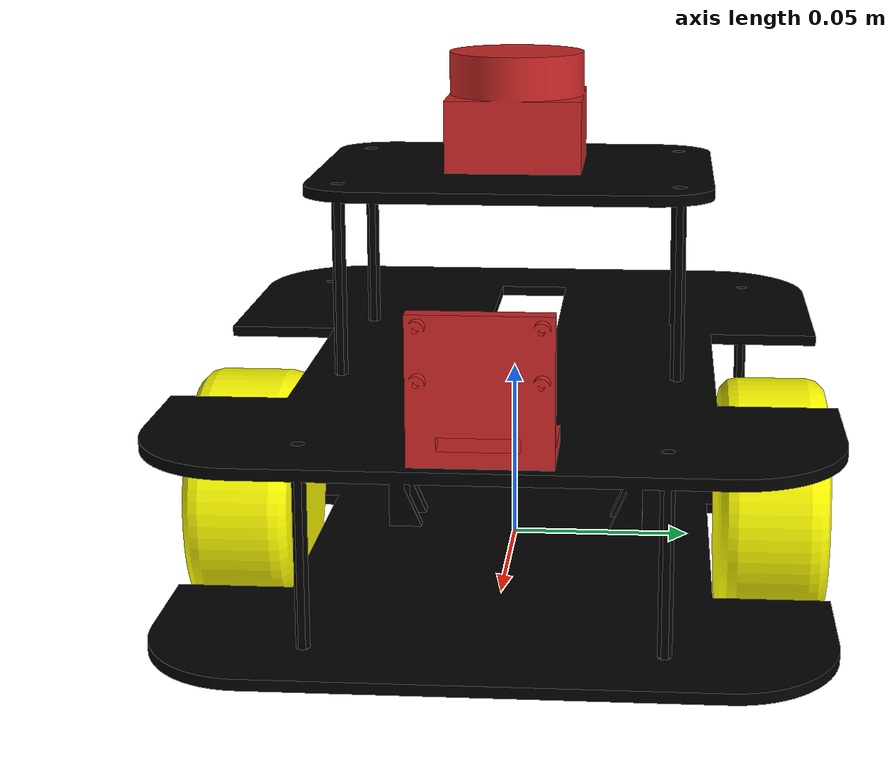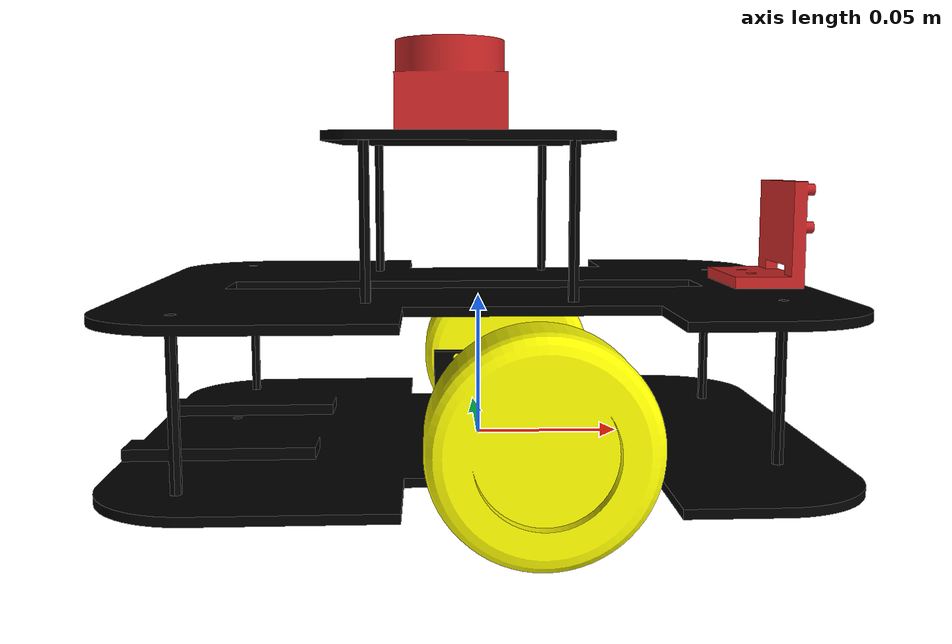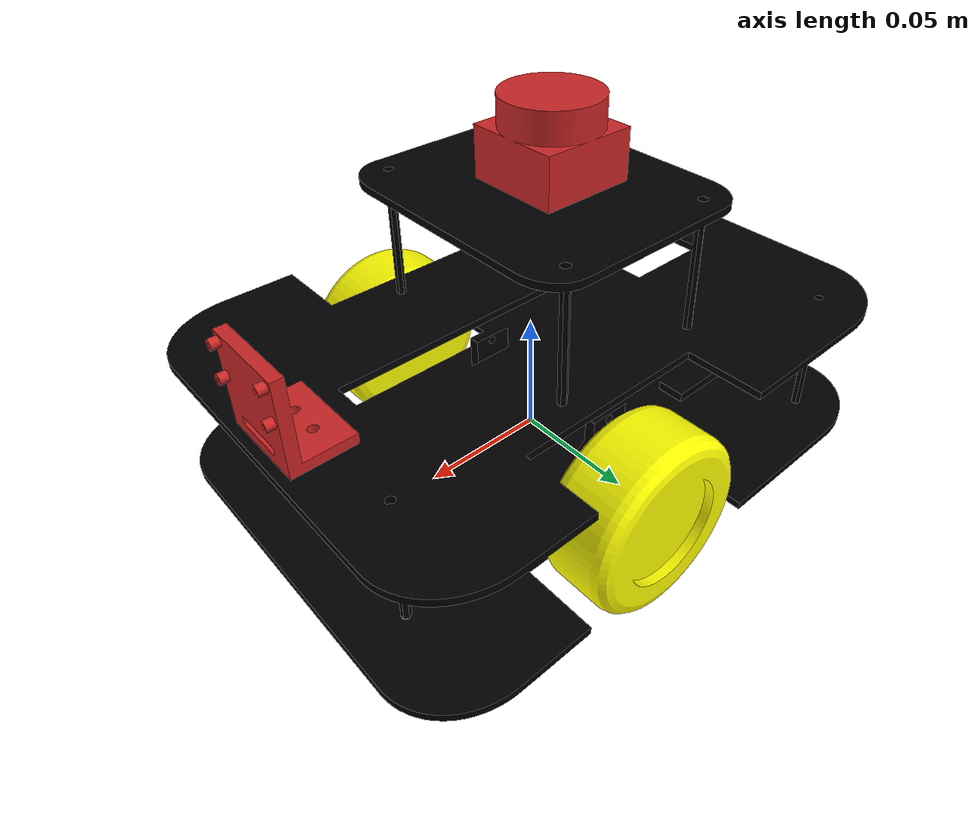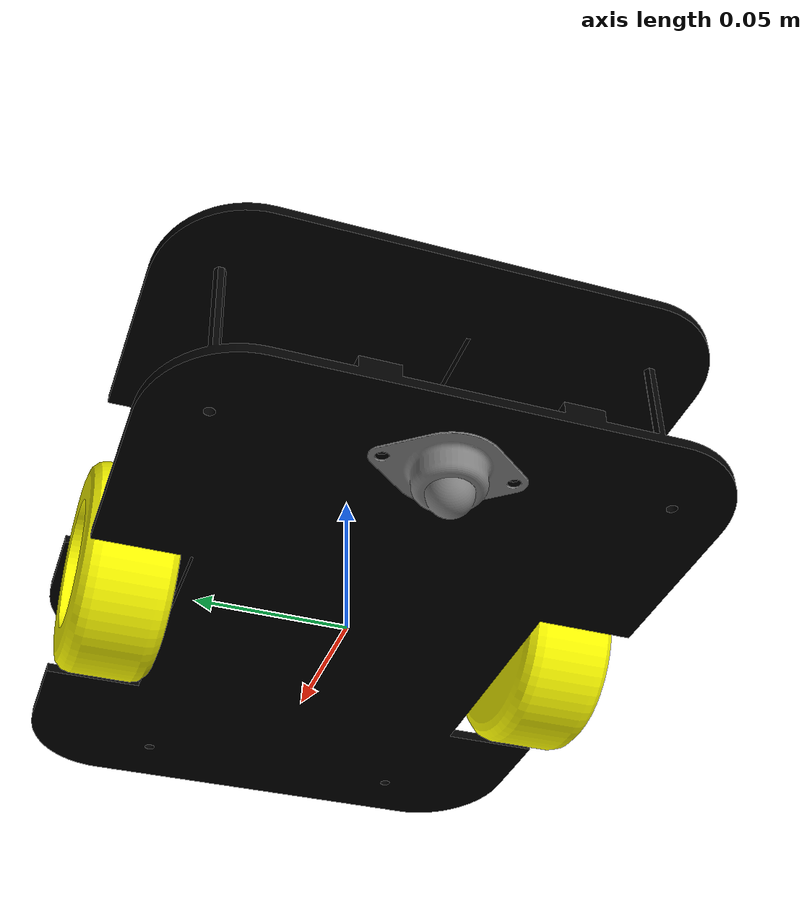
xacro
<?xml version="1.0"?>
<robot xmlns:xacro="http://www.ros.org/wiki/xacro"  name="robot">

    <xacro:arg name="use_ros2_control" default="true"/>

    <xacro:include filename="robot_core_2.xacro" />

    <xacro:if value="$(arg use_ros2_control)">
        <xacro:include filename="ros2_control.xacro" />
    </xacro:if>
    <xacro:unless value="$(arg use_ros2_control)">
        <xacro:include filename="gazebo_control.xacro" />
    </xacro:unless>
    <xacro:include filename="lidar.xacro" />
    <xacro:include filename="camera.xacro" />

</robot>

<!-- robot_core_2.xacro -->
<robot xmlns:xacro="http://www.ros.org/wiki/xacro"  name="robot">

    <xacro:include filename="inertial_macros.xacro"/>

    <xacro:property name="chassis_length" value="0.23" />
    <xacro:property name="chassis_width" value="0.14" />
    <xacro:property name="chassis_height" value="0.10" />
    <xacro:property name="chassis_mass" value="1.0" />
    <xacro:property name="wheel_radius" value="0.033" />
    <xacro:property name="wheel_thickness" value="0.026" />
    <xacro:property name="wheel_mass" value="0.5" />
    <xacro:property name="wheel_offset_x" value="0.025" />
    <xacro:property name="wheel_offset_y" value="${chassis_width/2 + wheel_thickness/2 - 0.01}" />
    <xacro:property name="wheel_offset_z" value="-${chassis_width/2 - 0.036}" />
    <xacro:property name="caster_wheel_radius" value="0.012" />
    <xacro:property name="caster_wheel_mass" value="0.5" />
    <xacro:property name="caster_wheel_offset_x" value="-0.08" />
    <xacro:property name="caster_wheel_offset_z" value="-0.058" />

    <xacro:property name="meshpath" value="/home/dev/dev_ws/src/wally" />

    <material name="yellow">
        <color rgba="1 1 0 1 " />
    </material>

    <material name="black">
        <color rgba="0 0 0 1 " />-
    </material>

    <material name="red">
        <color rgba="1 0 0 1 " />
    </material>

    <material name="grey">
        <color rgba="0.5 0.5 0.5 1 " />
    </material>

    <!-- BASE LINK-->

    <link name="base_link"></link>

    <joint name="base_footprint_joint" type="fixed">
        <parent link="base_link"/>
        <child link="base_footprint"/>
        <origin xyz="0 0 0" rpy="0 0 0"/>
    </joint>

    <link name="base_footprint"></link>

    <!-- CHASSIS-->

    <joint name="chassis_joint" type="fixed">
        <parent link="base_link"/>
        <child link="chassis"/>
        <origin xyz="-0.01 0 ${chassis_height/2}" />
    </joint>
z
    <link name="chassis">
        <visual>
            <geometry>
                <mesh filename="file://${meshpath}/meshes/stl/Cube.023.stl" scale="1.0 1.0 1.0"/>
            </geometry>
            <material name="black"/>
        </visual>
        <collision>
            <origin xyz="0 0 0" />
            <geometry>
                <box size="${chassis_length} ${chassis_width} ${chassis_height}"/>
            </geometry>
        </collision>
        <xacro:inertial_box mass="0.5" x="${chassis_length}" y="${chassis_width}" z="${chassis_height}">
            <origin xyz="0 0 0" rpy="0 0 0"/>
        </xacro:inertial_box>
    </link>

    <gazebo reference="chassis">
        <material>Gazebo/Black</material>
    </gazebo>

    <!-- LEFT WHEEL LINK-->

    <joint name="left_wheel_joint" type="continuous">
        <origin xyz="${wheel_offset_x} ${wheel_offset_y} ${wheel_offset_z}" rpy="-${pi/2} 0 0"/>
        <parent link="chassis"/>
        <child link="left_wheel"/>
        <axis xyz="0 0 1"/>

    </joint>

    <link name="left_wheel">
        <visual>
            <geometry>
                <mesh filename="file://${meshpath}/meshes/stl/Cylinder.036.stl" scale="1.0 1.0 1.0"/>
            </geometry>
            <material name="yellow"/>
        </visual>
        <collision>
            <geometry>
                <sphere radius="${wheel_radius}"/>
            </geometry>
        </collision>
        <xacro:inertial_cylinder mass="${wheel_mass}" length="${wheel_thickness}" radius="${wheel_radius}">
            <origin xyz="0 0 0" rpy="0 0 0"/>
        </xacro:inertial_cylinder>
    </link>

    <gazebo reference="left_wheel">
        <material>Gazebo/Yellow</material>
    </gazebo>

    <!-- RIGHT WHEEL LINK-->blue

    <joint name="right_wheel_joint" type="continuous">
        <origin xyz="${wheel_offset_x} -${wheel_offset_y} ${wheel_offset_z}" rpy="${pi/2} 0 0"/>
        <parent link="chassis"/>
        <child link="right_wheel"/>
        <axis xyz="0 0 -1"/>

    </joint>

    <link name="right_wheel">
        <visual>
            <geometry>
                <mesh filename="file://${meshpath}/meshes/stl/Cylinder.036.stl" scale="1.0 1.0 1.0"/>
            </geometry>
            <material name="yellow"/>
        </visual>
        <collision>
            <geometry>
                <sphere radius="${wheel_radius}"/>
            </geometry>
        </collision>
        <xacro:inertial_cylinder mass="${wheel_mass}" length="${wheel_thickness}" radius="${wheel_radius}">
            <origin xyz="0 0 0" rpy="0 0 0"/>
        </xacro:inertial_cylinder>
    </link>

    <gazebo reference="right_wheel">
        <material>Gazebo/Yellow</material>
    </gazebo>

    <!-- CASTER WHEEL-->

    <joint name="caster_wheel_joint" type="fixed">
        <parent link="chassis"/>
        <child link="caster_wheel"/>
        <origin xyz="${caster_wheel_offset_x} 0 ${caster_wheel_offset_z}"/>
    </joint>

    <link name="caster_wheel">
        <visual>
            <geometry>
                <mesh filename="file://${meshpath}/meshes/stl/Cube.020.stl" scale="1.0 1.0 1.0"/>
            </geometry>
            <material name="grey"/>
        </visual>
        <collision>
            <geometry>
                <sphere radius="${caster_wheel_radius}"/>
            </geometry>
        </collision>
        <xacro:inertial_sphere mass="${caster_wheel_mass}" radius="${caster_wheel_radius}">
            <origin xyz="0 0 0" rpy="0 0 0"/>
        </xacro:inertial_sphere>
    </link>

    <gazebo reference="caster_wheel">
        <material>Gazebo/Yellow</material>
        <mu1 value="0.0001"/>
        <mu2 value="0.0001"/>
    </gazebo>

</robot>

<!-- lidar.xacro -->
<robot xmlns:xacro="http://www.ros.org/wiki/xacro" >

    <joint name="laser_joint" type="fixed">
        <parent link="chassis"/>
        <child link="laser_frame"/>
        <origin xyz="0 0 0.055" rpy="0 0 0"/>
    </joint>

    <link name="laser_frame">
    <visual>
        <geometry>
            <mesh filename="file://$(find wally)/meshes/stl/Cube.019.stl" scale="1.0 1.0 1.0"/>
        </geometry>
    </visual>
    <collision>
        <geometry>
            <cylinder radius="0.02" length="0.07"/>
        </geometry>
    </collision>
    <xacro:inertial_cylinder mass="0.1" length="0.07" radius="0.02">
        <origin xyz="0 0 0" rpy="0 0 0"/>
    </xacro:inertial_cylinder>
</link>

<gazebo reference="laser_frame">
    <material>Gazebo/Red</material>
    <sensor name="laser" type="ray">
        <pose> 0 0 0 0 0 0 </pose>
        <visualize>false</visualize>
        <update_rate>10</update_rate>
        <ray>
            <scan>
                <horizontal>
                    <samples>360</samples>
                    <min_angle>-3.14</min_angle>
                    <max_angle>3.14</max_angle>
                </horizontal>
            </scan>
            <range>
                <min>0.3</min>
                <max>12</max>
            </range>
        </ray>
        <plugin name="laser_controller" filename="libgazebo_ros_ray_sensor.so">
            <ros>
                <argument>~/out:=scan</argument>
            </ros>
            <output_type>sensor_msgs/LaserScan</output_type>
            <frame_name>laser_frame</frame_name>
        </plugin>
    </sensor>

</gazebo>

</robot>

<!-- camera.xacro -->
<robot xmlns:xacro="http://www.ros.org/wiki/xacro" >

    <joint name="camera_joint" type="fixed">
        <parent link="chassis"/>
        <child link="camera_link"/>
        <origin xyz="0.12 0 0.026" rpy="0 0 0"/>
    </joint>

    <link name="camera_link">
    <visual>
        <geometry>
            <mesh filename="file://$(find wally)/meshes/stl/Cube.018.stl" scale="1.0 1.0 1.0"/>
        </geometry>
    </visual>
    <collision>
        <geometry>
            <box size="0.010 0.03 0.03"/>
        </geometry>
    </collision>
    <xacro:inertial_box mass="0.1" x="0.010" y="0.03" z="0.03">
        <origin xyz="0 0 0" rpy="0 0 0"/>
    </xacro:inertial_box>
</link>

<joint name="camera_optical_joint" type="fixed">
    <origin xyz="0 0 0" rpy="${-pi/2} 0 ${-pi/2}" />
    <parent link="camera_link" />
    <child link="camera_link_optical" />
</joint>

<link name="camera_link_optical"></link>

<gazebo reference="camera_link">
    <material>Gazebo/Red</material>
    <sensor name="camera" type="camera">
        <pose> 0 0 0 0 0 0 </pose>
        <visualize>true</visualize>
        <update_rate>10</update_rate>
        <camera>
            <horizontal_fov>1.089</horizontal_fov>
            <image>
                <format>R8G8B8</format>
                <width>640</width>
                <height>480</height>
            </image>
            <clip>
                <near>0.05</near>
                <far>8.0</far>
            </clip>
        </camera>
        <plugin name="camera_controller" filename="libgazebo_ros_camera.so">
            <frame_name>camera_link_optical</frame_name>
        </plugin>
    </sensor>
</gazebo>

</robot>
